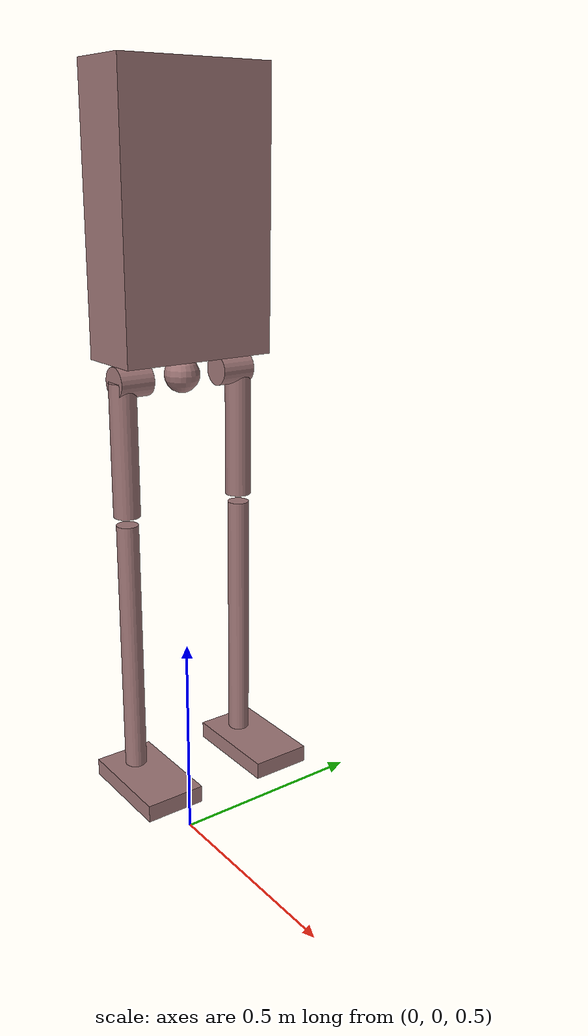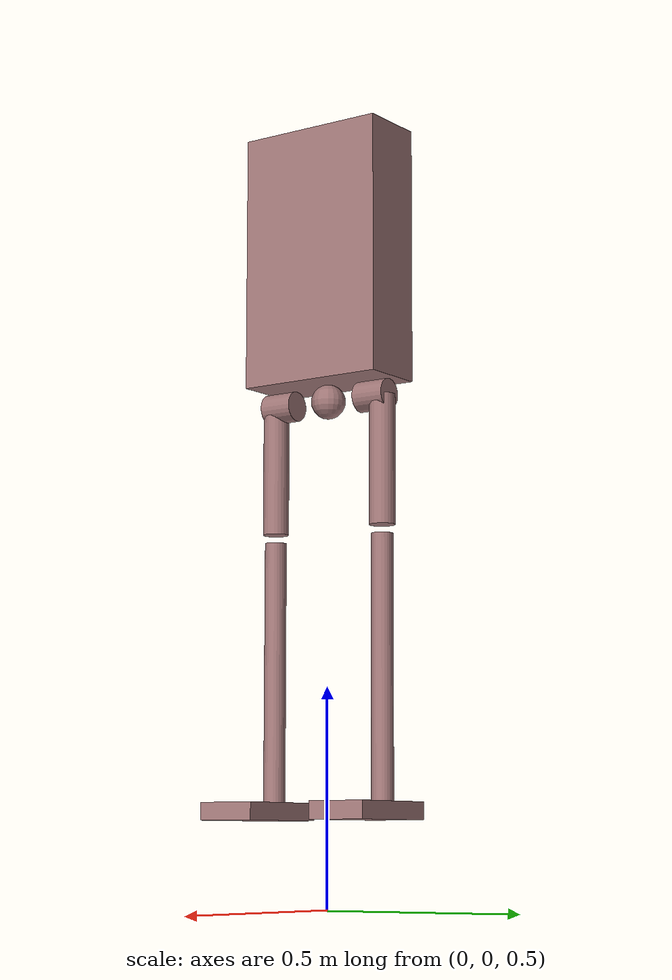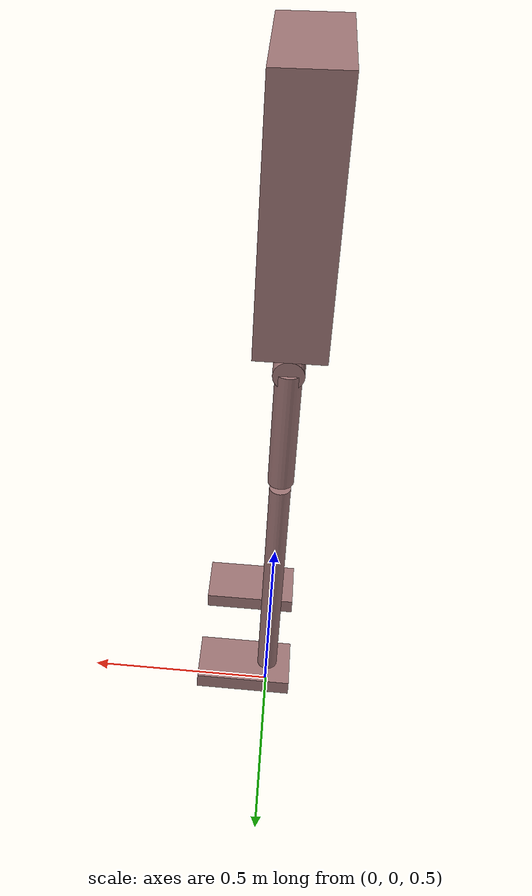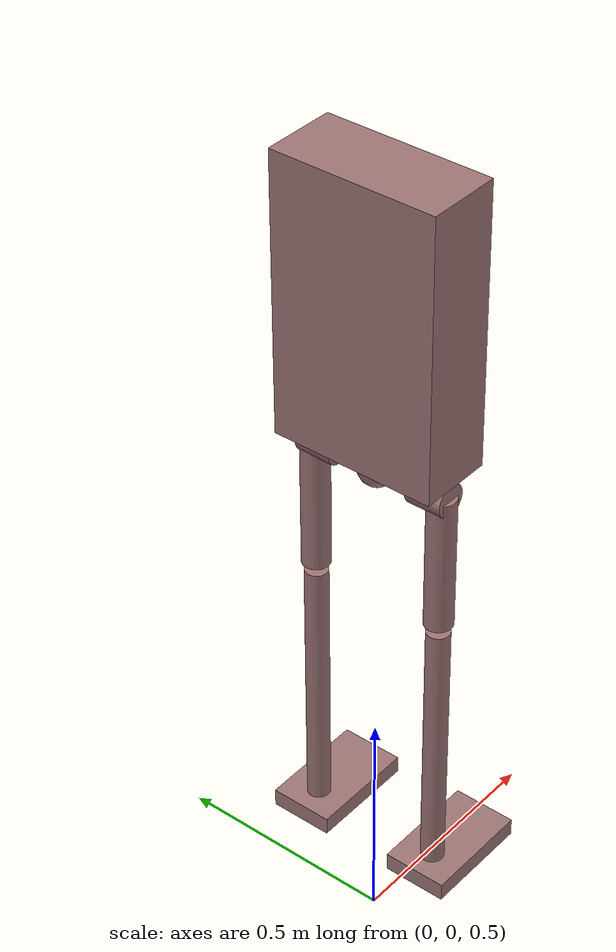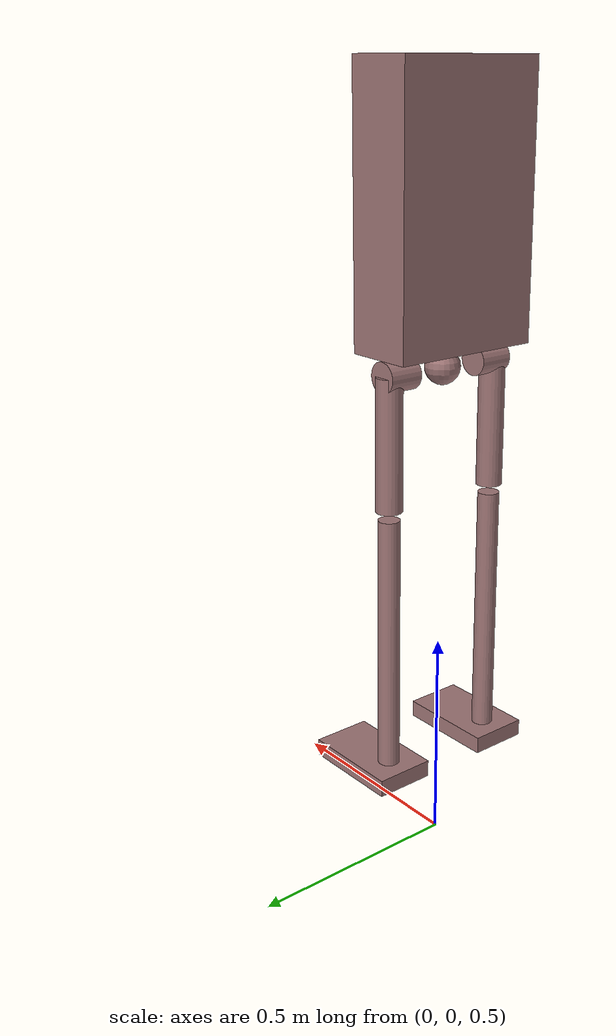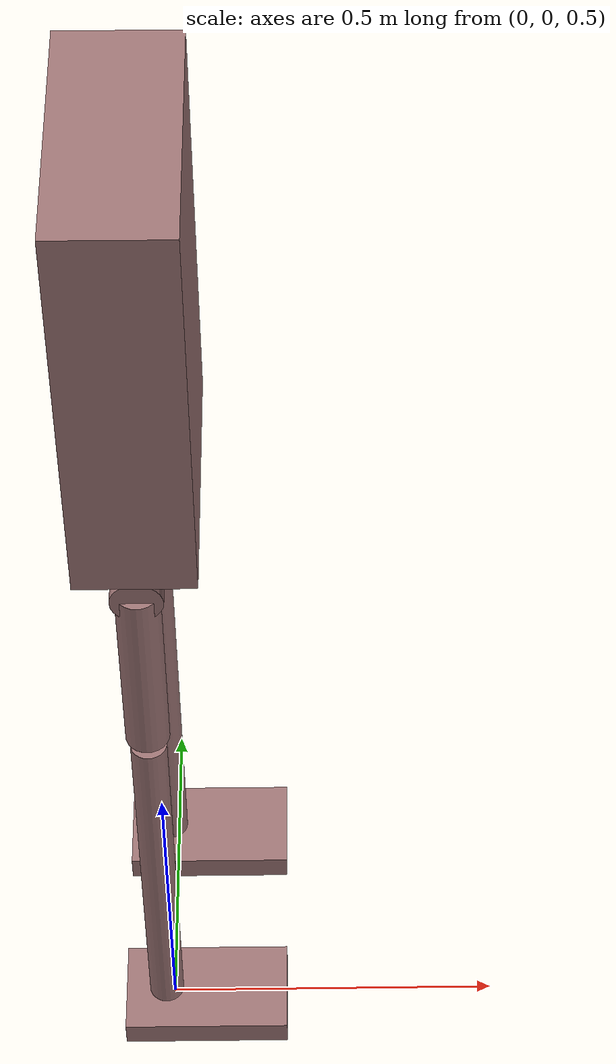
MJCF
<mujoco model="mauve_biped">
  <default>
    <geom rgba="0.62 0.46 0.46 1" density="1000" friction="1 0.005 0.0001"/>
    <joint damping="1.0" armature="0.01" limited="true"/>
  </default>

  <worldbody>
    <body name="torso" pos="0 0 2">
      <freejoint/>
      <geom name="torso_box" type="box" size="0.08 0.18 0.3"/>
      <geom name="pelvis_sphere" type="sphere" size="0.04" pos="0 0 -0.34"/>
      <body name="left_leg" pos="0 0.12 -0.34">
        <joint name="left_hip" type="hinge" axis="0 1 0" range="-70 45"/>
        <geom name="left_hip_hinge" type="cylinder" fromto="0 -0.03 0 0 0.05 0" size="0.035"/>
        <geom name="left_thigh" type="cylinder" fromto="0 0.03 0 0 0.03 -0.3" size="0.03"/>
        <body name="left_shin" pos="0 0.03 -0.32">
          <joint name="left_knee" type="hinge" axis="0 1 0" range="0 120"/>
          <geom name="left_shin_geom" type="cylinder" fromto="0 0 0 0 0 -0.6" size="0.025"/>
          <body name="left_foot" pos="0 0 -0.6">
             <geom name="left_foot_box" type="box" size="0.12 0.07 0.02" pos="0.06 0 -0.02"/>
          </body>
        </body>
      </body>
      <body name="right_leg" pos="0 -0.12 -0.34">
        <joint name="right_hip" type="hinge" axis="0 1 0" range="-70 45"/>
        <geom name="right_hip_hinge" type="cylinder" fromto="0 0.03 0 0 -0.05 0" size="0.035"/>
        <geom name="right_thigh" type="cylinder" fromto="0 -0.03 0 0 -0.03 -0.3" size="0.03"/>
        <body name="right_shin" pos="0 -0.03 -0.32">
          <joint name="right_knee" type="hinge" axis="0 1 0" range="0 120"/>
          <geom name="right_shin_geom" type="cylinder" fromto="0 0 0 0 0 -0.6" size="0.025"/>
          <body name="right_foot" pos="0 0 -0.6">
             <geom name="right_foot_box" type="box" size="0.12 0.07 0.02" pos="0.06 0 -0.02"/>
          </body>
        </body>
      </body>
    </body>
  </worldbody>

  <actuator>
    <motor joint="left_hip" gear="100"/>
    <motor joint="left_knee" gear="100"/>
    <motor joint="right_hip" gear="100"/>
    <motor joint="right_knee" gear="100"/>
  </actuator>
</mujoco>
